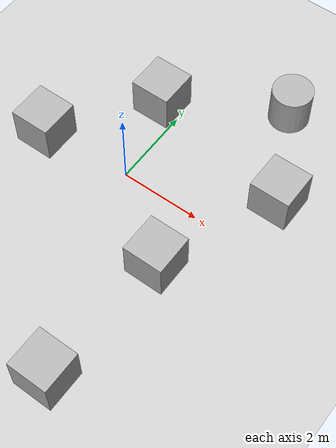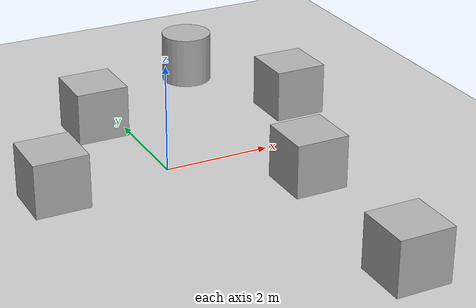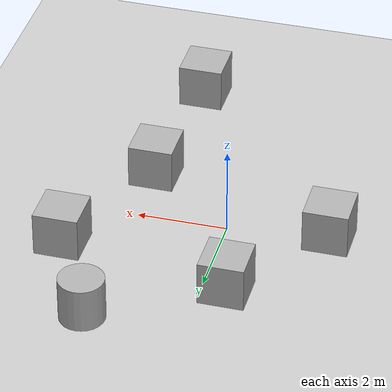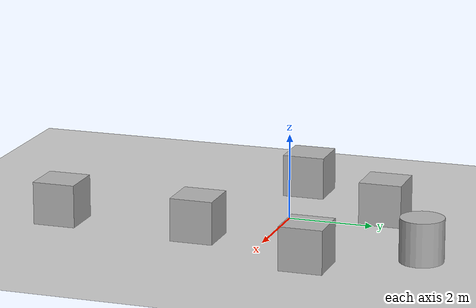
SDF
<?xml version="1.0" encoding="utf-8"?>
<sdf version='1.10'>
  <world name='empty'>
    <physics name='1ms' type='ignored'>
      <max_step_size>0.001</max_step_size>
      <real_time_factor>1</real_time_factor>
      <real_time_update_rate>1000</real_time_update_rate>
    </physics>
    <plugin name='gz::sim::systems::Physics' filename='gz-sim-physics-system'/>
    <plugin name='gz::sim::systems::UserCommands' filename='gz-sim-user-commands-system'/>
    <plugin name='gz::sim::systems::SceneBroadcaster' filename='gz-sim-scene-broadcaster-system'/>
    <plugin name='gz::sim::systems::Sensors' filename='gz-sim-sensors-system'>
      <render_engine>ogre2</render_engine>
    </plugin>
    <plugin name='gz::sim::systems::Contact' filename='gz-sim-contact-system'/>
    <gravity>0 0 -9.8000000000000007</gravity>
    <magnetic_field>5.5644999999999998e-06 2.2875799999999999e-05 -4.2388400000000002e-05</magnetic_field>
    <atmosphere type='adiabatic'/>
    <scene>
      <ambient>0.400000006 0.400000006 0.400000006 1</ambient>
      <background>0.699999988 0.699999988 0.699999988 1</background>
      <shadows>true</shadows>
    </scene>
    <model name='ground_plane'>
      <static>true</static>
      <link name='link'>
        <collision name='collision'>
          <geometry>
            <plane>
              <normal>0 0 1</normal>
              <size>100 100</size>
            </plane>
          </geometry>
          <surface>
            <friction>
              <ode/>
            </friction>
            <bounce/>
            <contact/>
          </surface>
        </collision>
        <visual name='visual'>
          <geometry>
            <plane>
              <normal>0 0 1</normal>
              <size>100 100</size>
            </plane>
          </geometry>
          <material>
            <ambient>0.800000012 0.800000012 0.800000012 1</ambient>
            <diffuse>0.800000012 0.800000012 0.800000012 1</diffuse>
            <specular>0.800000012 0.800000012 0.800000012 1</specular>
          </material>
        </visual>
        <pose>0 0 0 0 0 0</pose>
        <inertial>
          <pose>0 0 0 0 0 0</pose>
          <mass>1</mass>
          <inertia>
            <ixx>1</ixx>
            <ixy>0</ixy>
            <ixz>0</ixz>
            <iyy>1</iyy>
            <iyz>0</iyz>
            <izz>1</izz>
          </inertia>
        </inertial>
        <enable_wind>false</enable_wind>
      </link>
      <pose>0 0 0 0 0 0</pose>
      <self_collide>false</self_collide>
    </model>
    <model name='box'>
      <pose>1.8029219467110664 -4.9402323017846799 0.49999999980497606 1.0048033485058014e-21 -2.4640853465547739e-21 -3.9210766489770922e-22</pose>
      <link name='box_link'>
        <inertial>
          <inertia>
            <ixx>0.16666</ixx>
            <ixy>0</ixy>
            <ixz>0</ixz>
            <iyy>0.16666</iyy>
            <iyz>0</iyz>
            <izz>0.16666</izz>
          </inertia>
          <mass>1</mass>
          <pose>0 0 0 0 0 0</pose>
        </inertial>
        <collision name='box_collision'>
          <geometry>
            <box>
              <size>1 1 1</size>
            </box>
          </geometry>
          <surface>
            <friction>
              <ode/>
            </friction>
            <bounce/>
            <contact/>
          </surface>
        </collision>
        <visual name='box_visual'>
          <geometry>
            <box>
              <size>1 1 1</size>
            </box>
          </geometry>
          <material>
            <ambient>0.300000012 0.300000012 0.300000012 1</ambient>
            <diffuse>0.699999988 0.699999988 0.699999988 1</diffuse>
            <specular>1 1 1 1</specular>
          </material>
        </visual>
        <pose>0 0 0 0 0 0</pose>
        <enable_wind>false</enable_wind>
      </link>
      <static>false</static>
      <self_collide>false</self_collide>
    </model>
    <model name='cylinder'>
      <pose>2.1278173043812618 3.7029515542140965 0.49999943207967634 2.5210160480119534e-20 1.5537065464925922e-20 -8.8626556358186986e-21</pose>
      <link name='cylinder_link'>
        <inertial>
          <inertia>
            <ixx>0.14580000000000001</ixx>
            <ixy>0</ixy>
            <ixz>0</ixz>
            <iyy>0.14580000000000001</iyy>
            <iyz>0</iyz>
            <izz>0.125</izz>
          </inertia>
          <mass>1</mass>
          <pose>0 0 0 0 0 0</pose>
        </inertial>
        <collision name='cylinder_collision'>
          <geometry>
            <cylinder>
              <radius>0.5</radius>
              <length>1</length>
            </cylinder>
          </geometry>
          <surface>
            <friction>
              <ode/>
            </friction>
            <bounce/>
            <contact/>
          </surface>
        </collision>
        <visual name='cylinder_visual'>
          <geometry>
            <cylinder>
              <radius>0.5</radius>
              <length>1</length>
            </cylinder>
          </geometry>
          <material>
            <ambient>0.300000012 0.300000012 0.300000012 1</ambient>
            <diffuse>0.699999988 0.699999988 0.699999988 1</diffuse>
            <specular>1 1 1 1</specular>
          </material>
        </visual>
        <pose>0 0 0 0 0 0</pose>
        <enable_wind>false</enable_wind>
      </link>
      <static>false</static>
      <self_collide>false</self_collide>
    </model>

    <model name='box_0'>
      <pose>3.2795625027414168 1.4225508455879943 0.49999999990199806 6.2287739151293738e-22 9.3279666454713669e-22 -3.6315533669320137e-22</pose>
      <link name='box_link'>
        <inertial>
          <inertia>
            <ixx>0.16666</ixx>
            <ixy>0</ixy>
            <ixz>0</ixz>
            <iyy>0.16666</iyy>
            <iyz>0</iyz>
            <izz>0.16666</izz>
          </inertia>
          <mass>1</mass>
          <pose>0 0 0 0 0 0</pose>
        </inertial>
        <collision name='box_collision'>
          <geometry>
            <box>
              <size>1 1 1</size>
            </box>
          </geometry>
          <surface>
            <friction>
              <ode/>
            </friction>
            <bounce/>
            <contact/>
          </surface>
        </collision>
        <visual name='box_visual'>
          <geometry>
            <box>
              <size>1 1 1</size>
            </box>
          </geometry>
          <material>
            <ambient>0.300000012 0.300000012 0.300000012 1</ambient>
            <diffuse>0.699999988 0.699999988 0.699999988 1</diffuse>
            <specular>1 1 1 1</specular>
          </material>
        </visual>
        <pose>0 0 0 0 0 0</pose>
        <enable_wind>false</enable_wind>
      </link>
      <static>false</static>
      <self_collide>false</self_collide>
    </model>
    <model name='box_1'>
      <pose>-0.54727860229159031 2.1494715135747557 0.49999999990199806 6.2287739151293738e-22 9.3279666454713669e-22 -3.6315533669320137e-22</pose>
      <link name='box_link'>
        <inertial>
          <inertia>
            <ixx>0.16666</ixx>
            <ixy>0</ixy>
            <ixz>0</ixz>
            <iyy>0.16666</iyy>
            <iyz>0</iyz>
            <izz>0.16666</izz>
          </inertia>
          <mass>1</mass>
          <pose>0 0 0 0 0 0</pose>
        </inertial>
        <collision name='box_collision'>
          <geometry>
            <box>
              <size>1 1 1</size>
            </box>
          </geometry>
          <surface>
            <friction>
              <ode/>
            </friction>
            <bounce/>
            <contact/>
          </surface>
        </collision>
        <visual name='box_visual'>
          <geometry>
            <box>
              <size>1 1 1</size>
            </box>
          </geometry>
          <material>
            <ambient>0.300000012 0.300000012 0.300000012 1</ambient>
            <diffuse>0.699999988 0.699999988 0.699999988 1</diffuse>
            <specular>1 1 1 1</specular>
          </material>
        </visual>
        <pose>0 0 0 0 0 0</pose>
        <enable_wind>false</enable_wind>
      </link>
      <static>false</static>
      <self_collide>false</self_collide>
    </model>
    <model name='box_2'>
      <pose>-2.2321246865040245 -0.20219114888280795 0.49999999990199806 6.2287739151293738e-22 9.3279666454713669e-22 -3.6315533669320137e-22</pose>
      <link name='box_link'>
        <inertial>
          <inertia>
            <ixx>0.16666</ixx>
            <ixy>0</ixy>
            <ixz>0</ixz>
            <iyy>0.16666</iyy>
            <iyz>0</iyz>
            <izz>0.16666</izz>
          </inertia>
          <mass>1</mass>
          <pose>0 0 0 0 0 0</pose>
        </inertial>
        <collision name='box_collision'>
          <geometry>
            <box>
              <size>1 1 1</size>
            </box>
          </geometry>
          <surface>
            <friction>
              <ode/>
            </friction>
            <bounce/>
            <contact/>
          </surface>
        </collision>
        <visual name='box_visual'>
          <geometry>
            <box>
              <size>1 1 1</size>
            </box>
          </geometry>
          <material>
            <ambient>0.300000012 0.300000012 0.300000012 1</ambient>
            <diffuse>0.699999988 0.699999988 0.699999988 1</diffuse>
            <specular>1 1 1 1</specular>
          </material>
        </visual>
        <pose>0 0 0 0 0 0</pose>
        <enable_wind>false</enable_wind>
      </link>
      <static>false</static>
      <self_collide>false</self_collide>
    </model>
    <model name='box_3'>
      <pose>2.0269637381927321 -1.5196024568145827 0.49999999990199806 1.7084716059672498e-21 1.7859134985792927e-21 -2.0193124312478175e-22</pose>
      <link name='box_link'>
        <inertial>
          <inertia>
            <ixx>0.16666</ixx>
            <ixy>0</ixy>
            <ixz>0</ixz>
            <iyy>0.16666</iyy>
            <iyz>0</iyz>
            <izz>0.16666</izz>
          </inertia>
          <mass>1</mass>
          <pose>0 0 0 0 0 0</pose>
        </inertial>
        <collision name='box_collision'>
          <geometry>
            <box>
              <size>1 1 1</size>
            </box>
          </geometry>
          <surface>
            <friction>
              <ode/>
            </friction>
            <bounce/>
            <contact/>
          </surface>
        </collision>
        <visual name='box_visual'>
          <geometry>
            <box>
              <size>1 1 1</size>
            </box>
          </geometry>
          <material>
            <ambient>0.300000012 0.300000012 0.300000012 1</ambient>
            <diffuse>0.699999988 0.699999988 0.699999988 1</diffuse>
            <specular>1 1 1 1</specular>
          </material>
        </visual>
        <pose>0 0 0 0 0 0</pose>
        <enable_wind>false</enable_wind>
      </link>
      <static>false</static>
      <self_collide>false</self_collide>
    </model>
    <light name='sun' type='directional'>
      <pose>0 0 10 0 0 0</pose>
      <cast_shadows>true</cast_shadows>
      <intensity>1</intensity>
      <direction>-0.5 0.10000000000000001 -0.90000000000000002</direction>
      <diffuse>0.800000012 0.800000012 0.800000012 1</diffuse>
      <specular>0.200000003 0.200000003 0.200000003 1</specular>
      <attenuation>
        <range>1000</range>
        <linear>0.01</linear>
        <constant>0.90000000000000002</constant>
        <quadratic>0.001</quadratic>
      </attenuation>
      <spot>
        <inner_angle>0</inner_angle>
        <outer_angle>0</outer_angle>
        <falloff>0</falloff>
      </spot>
    </light>
  </world>
</sdf>
